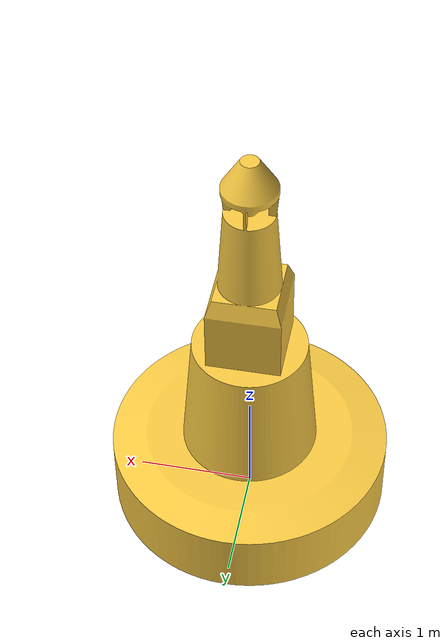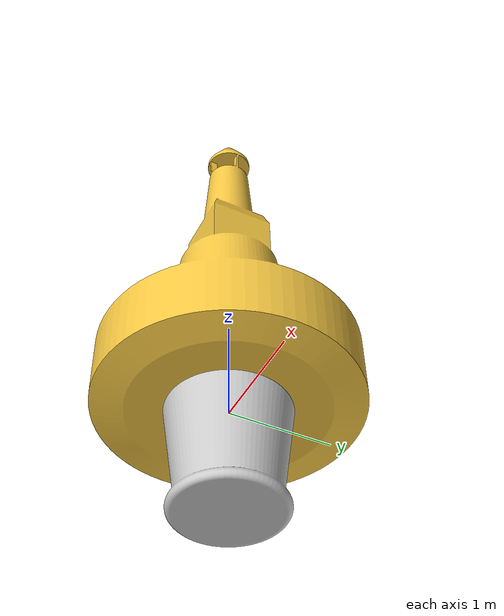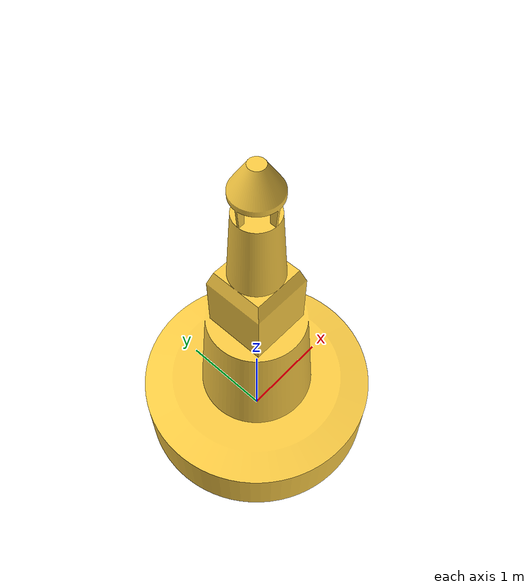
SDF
<?xml version="1.0"?>
<sdf version="1.6">
    <model name="buoy_yellow">
        <link name="base_link">
            <frame name="part_1_frame"><pose>0 0 0 0 0 0</pose></frame>
            <visual name="part_1_0_part_1_visual">
                <pose>0 0 0 0 0 0</pose>
                <geometry>
                <mesh><uri>meshes/part_1.stl</uri></mesh>
                </geometry>
                <material><ambient>0.980392 0.796078 0.262745 1</ambient><diffuse>0.980392 0.796078 0.262745 1</diffuse><specular>0.1 0.1 0.1 1</specular><emissive>0 0 0 0</emissive></material>
            </visual>
            <collision name="part_1_0_part_1_visual">
                <pose>0 0 0 0 -0 0</pose>
                <geometry>
                    <mesh><uri>meshes/part_1.stl</uri></mesh>
                </geometry>
            </collision>
            <inertial>
                <pose frame="part_1_frame">0 0 0.73927 0 0 0</pose>
                <mass>446.912</mass>
                <inertia><ixx>339.973</ixx><ixy>0</ixy><ixz>0</ixz><iyy>339.973</iyy><iyz>0</iyz><izz>231.574</izz></inertia>
            </inertial>
        </link>

        <link name="underwater_link">
            <frame name="part_2_frame"><pose>0 0 0 0 0 0</pose></frame>
            <visual name="part_2_0_part_2_visual">
                <pose>0 0 0 0 0 0</pose>
                <geometry>
                <mesh><uri>meshes/part_2.stl</uri></mesh>
                </geometry>
                <material><ambient>0.8 0.8 0.8 1</ambient><diffuse>0.8 0.8 0.8 1</diffuse><specular>0.1 0.1 0.1 1</specular><emissive>0 0 0 0</emissive></material>
            </visual>
            <collision name="part_2_0_part_2_visual">
                <pose>0 -3.46945e-17 0 0 -0 0</pose>
                <geometry>
                <mesh><uri>meshes/part_2.stl</uri></mesh>
                </geometry>
            </collision>
            <inertial>
                <pose frame="part_2_frame">0 0 -0.465354 0 0 0</pose>
                <mass>393.41</mass>
                <inertia><ixx>58.7982</ixx><ixy>0</ixy><ixz>0</ixz><iyy>58.7982</iyy><iyz>0</iyz><izz>50.2168</izz></inertia>
            </inertial>
        </link>

        <joint name="buoy_joint" type="fixed">
            <pose>0 0 0 0 0 0</pose>
            <parent>base_link</parent>
            <child>underwater_link</child>
            <axis>
                <xyz>0 0 1</xyz>
            </axis>
        </joint>

        <plugin name="BuoyancyPlugin" filename="libbuoyancy_gazebo_plugin.so">
            <wave_model>ocean_waves</wave_model>
            <fluid_density>997</fluid_density>
            <fluid_level>0.0</fluid_level>
            <linear_drag>25.0</linear_drag>
            <angular_drag>2.0</angular_drag>
            <buoyancy name="buoyancy_sphere">
                <link_name>base_link</link_name>
                <pose>0 0 0.8 0 0 0</pose>
                <geometry>
                <sphere>
                    <radius>1.0</radius>
                </sphere>
                </geometry>
            </buoyancy>
        </plugin>
    </model>
</sdf>
